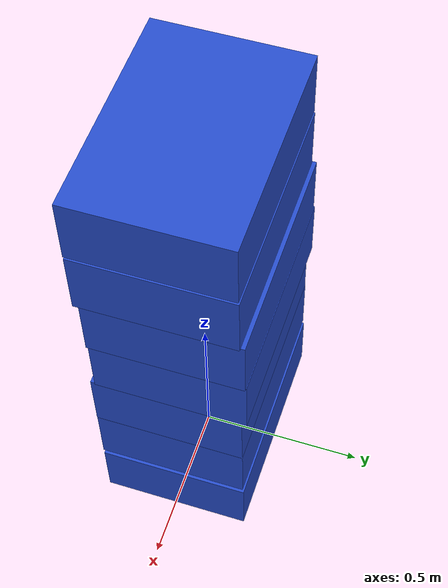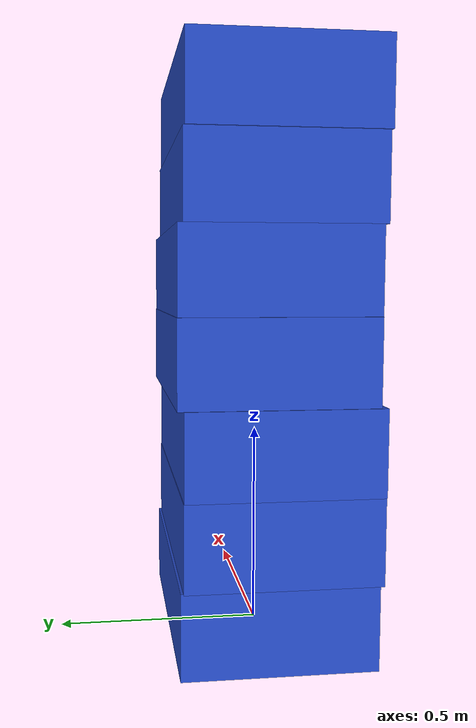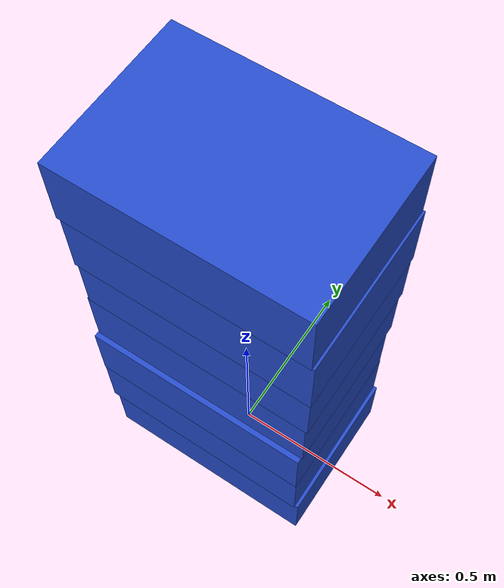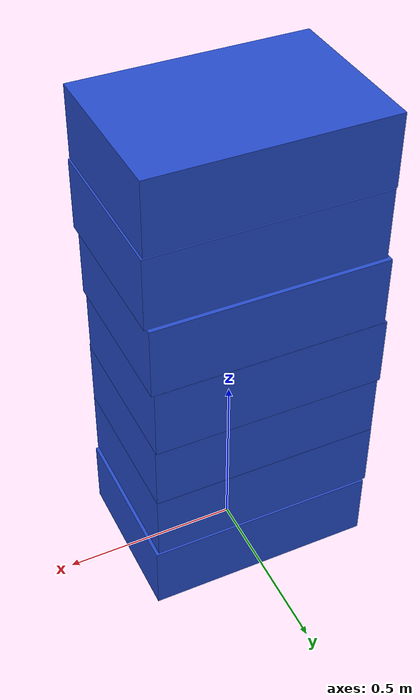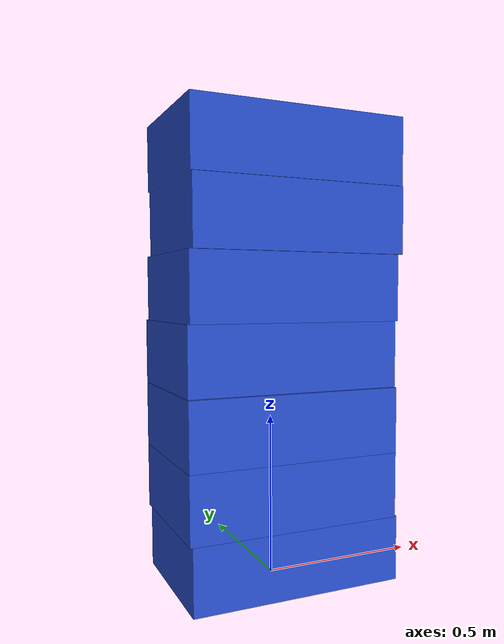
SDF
<?xml version="1.0" encoding="UTF-8"?>
<sdf version='1.4'>
   <model name="baggage_B_x7">
      <model name="baggage_B_0">
         <static>true</static>
         <link name="link">
               <collision name="collision">
                  <geometry>
                     <box>
                        <size>0.65 0.45 0.2</size>
                     </box>
                  </geometry>
               </collision>
               <visual name="visual">
                  <geometry>
                     <box>
                        <size>0.65 0.45 0.2</size>
                     </box>
                  </geometry>
                  <material>
                     <script>
                        <uri>file://media/materials/scripts/gazebo.material</uri>
                        <name>Gazebo/Blue</name>
                     </script>
                  </material>
               </visual>
            </link>
            <pose frame=''>0 0 0.1 0 0 0</pose>
      </model>
      <model name="baggage_B_1">
         <static>true</static>
         <link name="link">
               <collision name="collision">
                  <geometry>
                     <box>
                        <size>0.65 0.45 0.2</size>
                     </box>
                  </geometry>
               </collision>
               <visual name="visual">
                  <geometry>
                     <box>
                        <size>0.65 0.45 0.2</size>
                     </box>
                  </geometry>
                  <material>
                     <script>
                        <uri>file://media/materials/scripts/gazebo.material</uri>
                        <name>Gazebo/Blue</name>
                     </script>
                  </material>
               </visual>
            </link>
            <pose frame=''>-0.0094 -0.0060 0.3 0 0 0</pose>
      </model>
      <model name="baggage_B_2">
         <static>true</static>
         <link name="link">
               <collision name="collision">
                  <geometry>
                     <box>
                        <size>0.65 0.45 0.2</size>
                     </box>
                  </geometry>
               </collision>
               <visual name="visual">
                  <geometry>
                     <box>
                        <size>0.65 0.45 0.2</size>
                     </box>
                  </geometry>
                  <material>
                     <script>
                        <uri>file://media/materials/scripts/gazebo.material</uri>
                        <name>Gazebo/Blue</name>
                     </script>
                  </material>
               </visual>
            </link>
            <pose frame=''>-0.0099 -0.0073 0.5 0 0 0</pose>
      </model>
      <model name="baggage_B_3">
         <static>true</static>
         <link name="link">
               <collision name="collision">
                  <geometry>
                     <box>
                        <size>0.65 0.45 0.2</size>
                     </box>
                  </geometry>
               </collision>
               <visual name="visual">
                  <geometry>
                     <box>
                        <size>0.65 0.45 0.2</size>
                     </box>
                  </geometry>
                  <material>
                     <script>
                        <uri>file://media/materials/scripts/gazebo.material</uri>
                        <name>Gazebo/Blue</name>
                     </script>
                  </material>
               </visual>
            </link>
            <pose frame=''>-0.0063 0.0078 0.7 0 0 0</pose>
      </model>
      <model name="baggage_B_4">
         <static>true</static>
         <link name="link">
               <collision name="collision">
                  <geometry>
                     <box>
                        <size>0.65 0.45 0.2</size>
                     </box>
                  </geometry>
               </collision>
               <visual name="visual">
                  <geometry>
                     <box>
                        <size>0.65 0.45 0.2</size>
                     </box>
                  </geometry>
                  <material>
                     <script>
                        <uri>file://media/materials/scripts/gazebo.material</uri>
                        <name>Gazebo/Blue</name>
                     </script>
                  </material>
               </visual>
            </link>
            <pose frame=''>0.0002 0.0059 0.9 0 0 0</pose>
      </model>
      <model name="baggage_B_5">
         <static>true</static>
         <link name="link">
               <collision name="collision">
                  <geometry>
                     <box>
                        <size>0.65 0.45 0.2</size>
                     </box>
                  </geometry>
               </collision>
               <visual name="visual">
                  <geometry>
                     <box>
                        <size>0.65 0.45 0.2</size>
                     </box>
                  </geometry>
                  <material>
                     <script>
                        <uri>file://media/materials/scripts/gazebo.material</uri>
                        <name>Gazebo/Blue</name>
                     </script>
                  </material>
               </visual>
            </link>
            <pose frame=''>0.0073 -0.0061 1.1 0 0 0</pose>
      </model>
      <model name="baggage_B_6">
         <static>true</static>
         <link name="link">
               <collision name="collision">
                  <geometry>
                     <box>
                        <size>0.65 0.45 0.2</size>
                     </box>
                  </geometry>
               </collision>
               <visual name="visual">
                  <geometry>
                     <box>
                        <size>0.65 0.45 0.2</size>
                     </box>
                  </geometry>
                  <material>
                     <script>
                        <uri>file://media/materials/scripts/gazebo.material</uri>
                        <name>Gazebo/Blue</name>
                     </script>
                  </material>
               </visual>
            </link>
            <pose frame=''>0.0019 -0.0096 1.3 0 0 0</pose>
      </model>
   </model>
</sdf>
